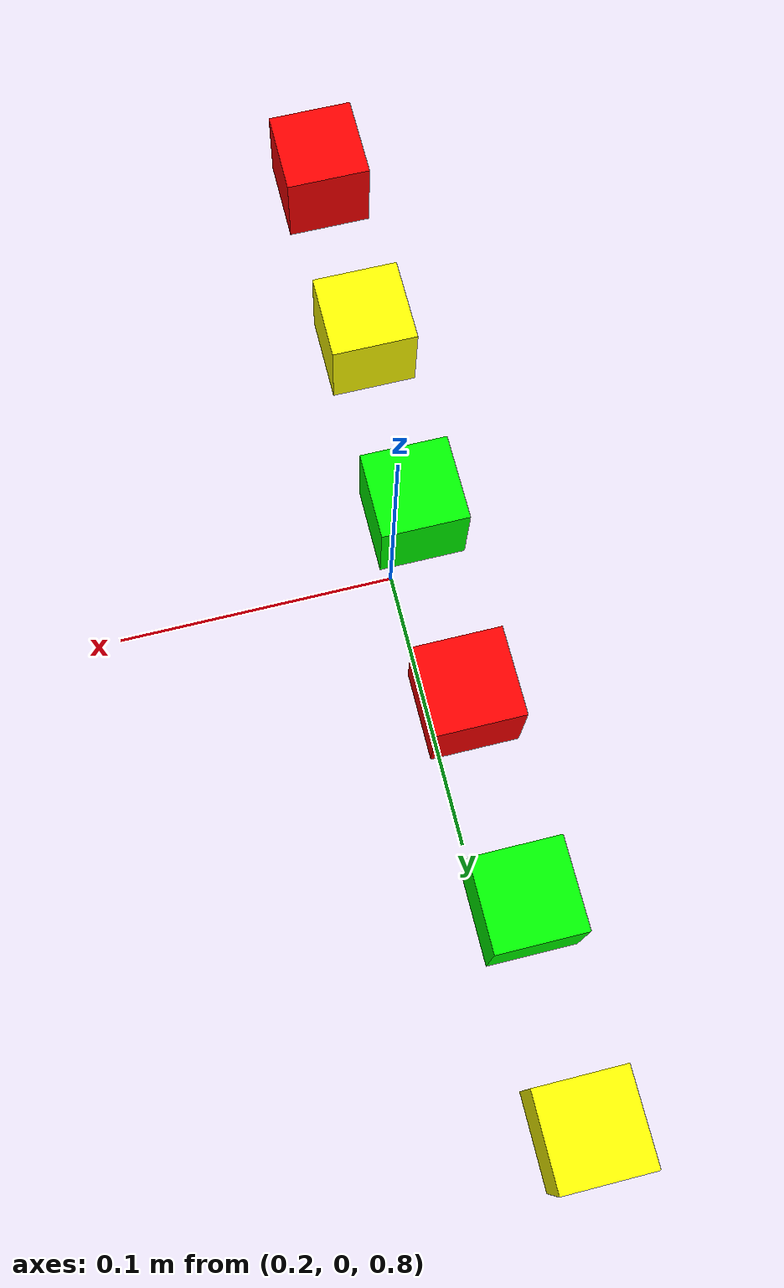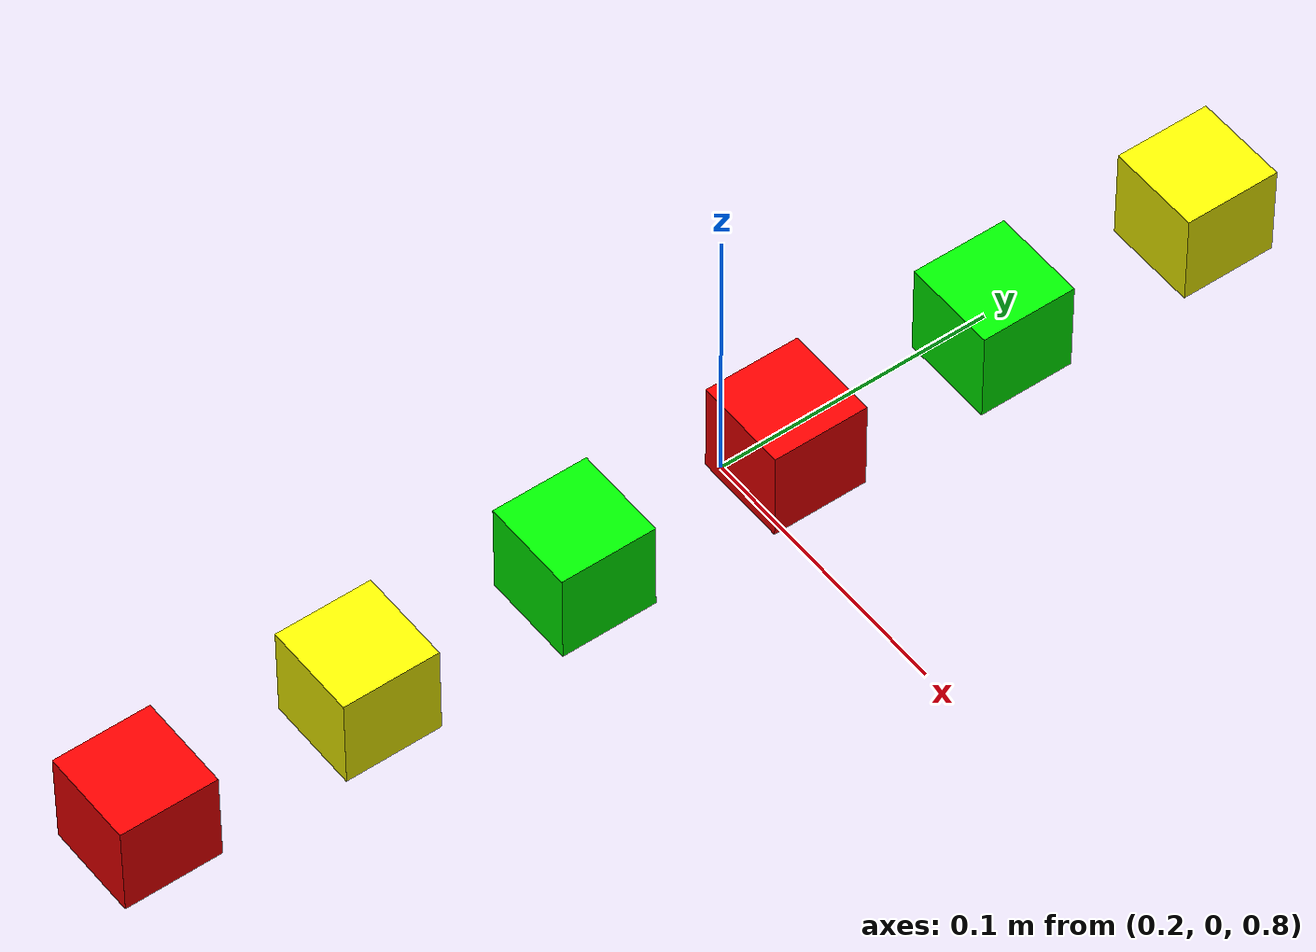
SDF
<?xml version="1.0" ?>
<sdf version="1.9">
  <world name="pick_and_place_world">

    <!-- Physics: ODE solver, 1000 Hz -->
    <physics name="default_physics" type="ode">
      <max_step_size>0.001</max_step_size>
      <real_time_factor>1.0</real_time_factor>
      <real_time_update_rate>1000</real_time_update_rate>
      <ode>
        <solver>
          <type>quick</type>
          <iters>50</iters>
          <sor>1.3</sor>
        </solver>
        <constraints>
          <cfm>0.0</cfm>
          <erp>0.2</erp>
          <contact_max_correcting_vel>100</contact_max_correcting_vel>
          <contact_surface_layer>0.001</contact_surface_layer>
        </constraints>
      </ode>
    </physics>

    <!-- Lighting -->
    <light type="directional" name="sun">
      <cast_shadows>true</cast_shadows>
      <pose>0 0 10 0 0 0</pose>
      <diffuse>0.8 0.8 0.8 1</diffuse>
      <specular>0.3 0.3 0.3 1</specular>
      <direction>-0.5 0.1 -0.9</direction>
    </light>
    <light type="directional" name="fill_light">
      <cast_shadows>false</cast_shadows>
      <pose>2 -2 5 0 0 0</pose>
      <diffuse>0.4 0.4 0.4 1</diffuse>
      <specular>0.1 0.1 0.1 1</specular>
      <direction>0.3 0.4 -0.8</direction>
    </light>

    <!-- Ground plane -->
    <model name="ground_plane">
      <static>true</static>
      <link name="link">
        <collision name="collision">
          <geometry>
            <plane><normal>0 0 1</normal><size>100 100</size></plane>
          </geometry>
        </collision>
        <visual name="visual">
          <geometry>
            <plane><normal>0 0 1</normal><size>100 100</size></plane>
          </geometry>
          <material>
            <ambient>0.8 0.8 0.8 1</ambient>
            <diffuse>0.8 0.8 0.8 1</diffuse>
          </material>
        </visual>
      </link>
    </model>

    <!-- RED CUBE 1 -->
    <model name="red_cube">
      <pose>0.18 -0.20 0.7675 0 0 0</pose>
      <link name="cube_link">
        <inertial>
          <mass>0.04</mass>
          <inertia>
            <ixx>8.167e-06</ixx><ixy>0</ixy><ixz>0</ixz>
            <iyy>8.167e-06</iyy><iyz>0</iyz>
            <izz>8.167e-06</izz>
          </inertia>
        </inertial>
        <visual name="visual">
          <geometry><box><size>0.035 0.035 0.035</size></box></geometry>
          <material>
            <ambient>1.0 0.0 0.0 1</ambient>
            <diffuse>1.0 0.0 0.0 1</diffuse>
            <specular>0.1 0.1 0.1 1</specular>
          </material>
        </visual>
        <collision name="collision">
          <geometry><box><size>0.035 0.035 0.035</size></box></geometry>
          <surface>
            <friction>
              <ode><mu>2.5</mu><mu2>2.5</mu2></ode>
            </friction>
            <contact>
              <ode>
                <kp>1000000</kp>
                <kd>100</kd>
                <min_depth>0.001</min_depth>
              </ode>
            </contact>
          </surface>
        </collision>
      </link>
    </model>

    <!-- GREEN CUBE 1 -->
    <model name="green_cube">
      <pose>0.18 -0.04 0.7675 0 0 0</pose>
      <link name="cube_link">
        <inertial>
          <mass>0.04</mass>
          <inertia>
            <ixx>8.167e-06</ixx><ixy>0</ixy><ixz>0</ixz>
            <iyy>8.167e-06</iyy><iyz>0</iyz>
            <izz>8.167e-06</izz>
          </inertia>
        </inertial>
        <visual name="visual">
          <geometry><box><size>0.035 0.035 0.035</size></box></geometry>
          <material>
            <ambient>0.0 1.0 0.0 1</ambient>
            <diffuse>0.0 1.0 0.0 1</diffuse>
            <specular>0.1 0.1 0.1 1</specular>
          </material>
        </visual>
        <collision name="collision">
          <geometry><box><size>0.035 0.035 0.035</size></box></geometry>
          <surface>
            <friction>
              <ode><mu>2.5</mu><mu2>2.5</mu2></ode>
            </friction>
            <contact>
              <ode>
                <kp>1000000</kp>
                <kd>100</kd>
                <min_depth>0.001</min_depth>
              </ode>
            </contact>
          </surface>
        </collision>
      </link>
    </model>

    <!-- YELLOW CUBE 1 (was GREEN at this position) -->
    <model name="yellow_cube">
      <pose>0.18 -0.12 0.7675 0 0 0</pose>
      <link name="cube_link">
        <inertial>
          <mass>0.04</mass>
          <inertia>
            <ixx>8.167e-06</ixx><ixy>0</ixy><ixz>0</ixz>
            <iyy>8.167e-06</iyy><iyz>0</iyz>
            <izz>8.167e-06</izz>
          </inertia>
        </inertial>
        <visual name="visual">
          <geometry><box><size>0.035 0.035 0.035</size></box></geometry>
          <material>
            <ambient>1.0 1.0 0.0 1</ambient>
            <diffuse>1.0 1.0 0.0 1</diffuse>
            <specular>0.1 0.1 0.1 1</specular>
          </material>
        </visual>
        <collision name="collision">
          <geometry><box><size>0.035 0.035 0.035</size></box></geometry>
          <surface>
            <friction>
              <ode><mu>2.5</mu><mu2>2.5</mu2></ode>
            </friction>
            <contact>
              <ode>
                <kp>1000000</kp>
                <kd>100</kd>
                <min_depth>0.001</min_depth>
              </ode>
            </contact>
          </surface>
        </collision>
      </link>
    </model>

    <!-- RED CUBE 2 -->
    <model name="red_cube_2">
      <pose>0.18 0.04 0.7675 0 0 0</pose>
      <link name="cube_link">
        <inertial><mass>0.04</mass>
          <inertia><ixx>8.167e-06</ixx><ixy>0</ixy><ixz>0</ixz><iyy>8.167e-06</iyy><iyz>0</iyz><izz>8.167e-06</izz></inertia>
        </inertial>
        <visual name="visual">
          <geometry><box><size>0.035 0.035 0.035</size></box></geometry>
          <material><ambient>1.0 0.0 0.0 1</ambient><diffuse>1.0 0.0 0.0 1</diffuse><specular>0.1 0.1 0.1 1</specular></material>
        </visual>
        <collision name="collision">
          <geometry><box><size>0.035 0.035 0.035</size></box></geometry>
          <surface><friction><ode><mu>2.5</mu><mu2>2.5</mu2></ode></friction>
            <contact><ode><kp>1000000</kp><kd>100</kd><min_depth>0.001</min_depth></ode></contact></surface>
        </collision>
      </link>
    </model>

    <!-- GREEN CUBE 2 -->
    <model name="green_cube_2">
      <pose>0.18 0.12 0.7675 0 0 0</pose>
      <link name="cube_link">
        <inertial><mass>0.04</mass>
          <inertia><ixx>8.167e-06</ixx><ixy>0</ixy><ixz>0</ixz><iyy>8.167e-06</iyy><iyz>0</iyz><izz>8.167e-06</izz></inertia>
        </inertial>
        <visual name="visual">
          <geometry><box><size>0.035 0.035 0.035</size></box></geometry>
          <material><ambient>0.0 1.0 0.0 1</ambient><diffuse>0.0 1.0 0.0 1</diffuse><specular>0.1 0.1 0.1 1</specular></material>
        </visual>
        <collision name="collision">
          <geometry><box><size>0.035 0.035 0.035</size></box></geometry>
          <surface><friction><ode><mu>2.5</mu><mu2>2.5</mu2></ode></friction>
            <contact><ode><kp>1000000</kp><kd>100</kd><min_depth>0.001</min_depth></ode></contact></surface>
        </collision>
      </link>
    </model>

    <!-- YELLOW CUBE 2 -->
    <model name="yellow_cube_2">
      <pose>0.18 0.20 0.7675 0 0 0</pose>
      <link name="cube_link">
        <inertial><mass>0.04</mass>
          <inertia><ixx>8.167e-06</ixx><ixy>0</ixy><ixz>0</ixz><iyy>8.167e-06</iyy><iyz>0</iyz><izz>8.167e-06</izz></inertia>
        </inertial>
        <visual name="visual">
          <geometry><box><size>0.035 0.035 0.035</size></box></geometry>
          <material><ambient>1.0 1.0 0.0 1</ambient><diffuse>1.0 1.0 0.0 1</diffuse><specular>0.1 0.1 0.1 1</specular></material>
        </visual>
        <collision name="collision">
          <geometry><box><size>0.035 0.035 0.035</size></box></geometry>
          <surface><friction><ode><mu>2.5</mu><mu2>2.5</mu2></ode></friction>
            <contact><ode><kp>1000000</kp><kd>100</kd><min_depth>0.001</min_depth></ode></contact></surface>
        </collision>
      </link>
    </model>

    <plugin filename="gz-sim-physics-system"
            name="gz::sim::systems::Physics"/>
    <plugin filename="gz-sim-user-commands-system"
            name="gz::sim::systems::UserCommands"/>
    <plugin filename="gz-sim-scene-broadcaster-system"
            name="gz::sim::systems::SceneBroadcaster"/>
    <plugin filename="gz-sim-contact-system"
            name="gz::sim::systems::Contact"/>
    <plugin filename="gz-sim-sensors-system"
            name="gz::sim::systems::Sensors">
      <render_engine>ogre2</render_engine>
    </plugin>

    <model name="overhead_camera">
      <static>true</static>
      <pose>0.30 -0.25 1.7 0 1.5708 0</pose>
      <link name="link">
        <sensor name="camera_overhead" type="camera">
          <camera>
            <horizontal_fov>1.047</horizontal_fov>
            <image>
              <width>640</width>
              <height>480</height>
              <format>R8G8B8</format>
            </image>
            <clip>
              <near>0.05</near>
              <far>5.0</far>
            </clip>
          </camera>
          <always_on>true</always_on>
          <update_rate>30</update_rate>
          <visualize>true</visualize>
          <topic>/camera_overhead</topic>
        </sensor>
      </link>
    </model>

  </world>
</sdf>
